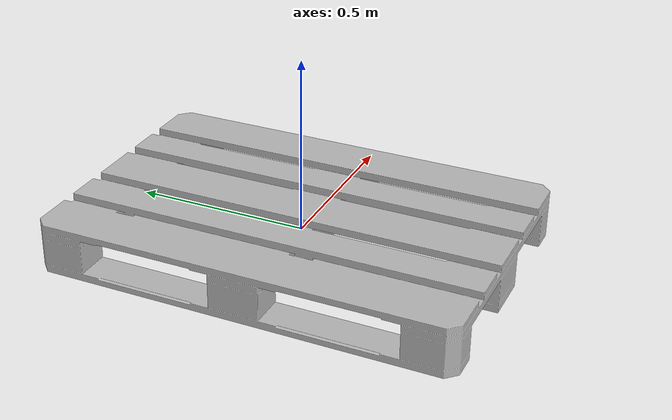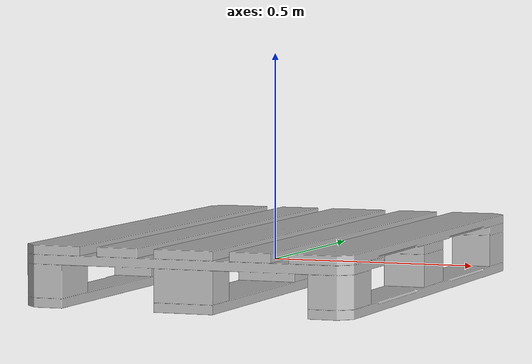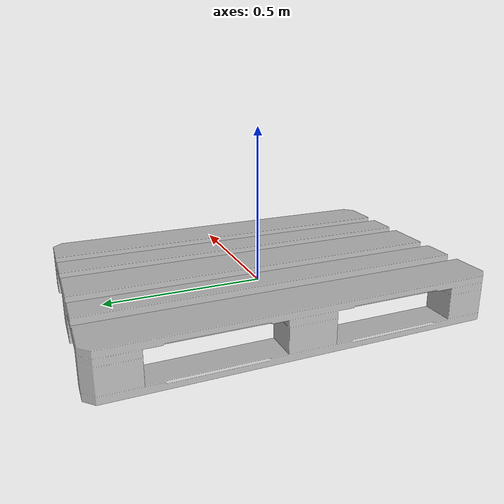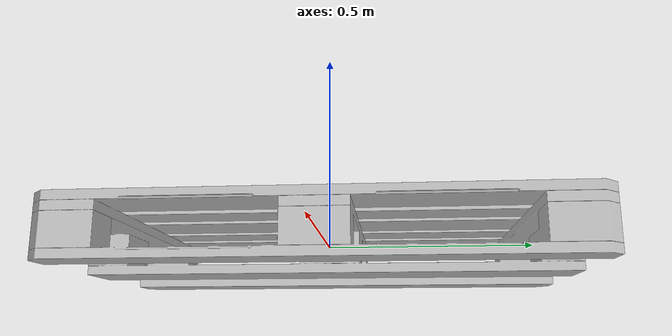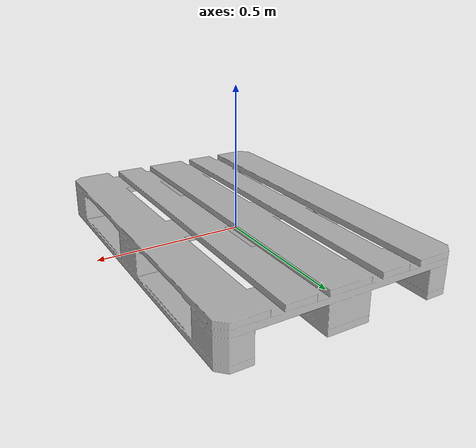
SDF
<?xml version="1.0"?>
<sdf version="1.6">
  <model name="sema_pallet">
    <link name="sema_pallet_link">
      <visual name="sema_pallet_visual">
        <pose>-0.08 0 -0.085 0 0 0</pose>
        <geometry>
          <mesh>
            <uri>model://sema_pallet/mesh/sema_pallet.dae</uri>
          </mesh>
        </geometry>
        <origin xyz="0 0 0" rpy="0 0 0"/>
      </visual>
      <collision name="sema_pallet_collision">
        <geometry>
          <box>
            <size>0.8 1.2 0.144</size>
          </box>
        </geometry>
      </collision>
      <inertial>
        <mass>13.44</mass>
        <inertia>
          <ixx>0.73875</ixx>
          <iyy>1.6347</iyy>
          <izz>2.3296</izz>
          <ixy>0</ixy>
          <ixz>0</ixz>
          <iyz>0</iyz>
        </inertia>
      </inertial>
    </link>
  </model>
</sdf>
